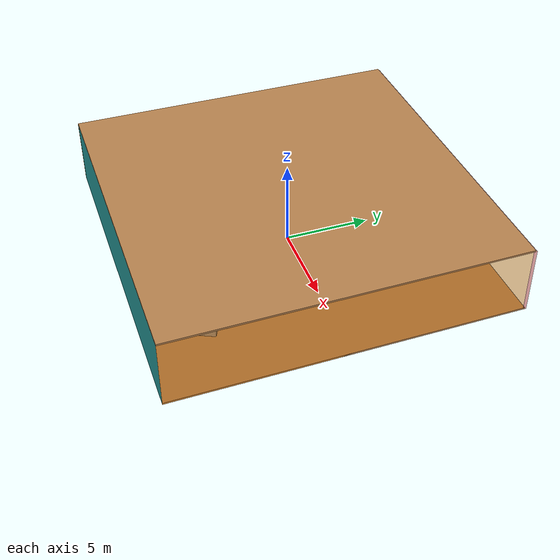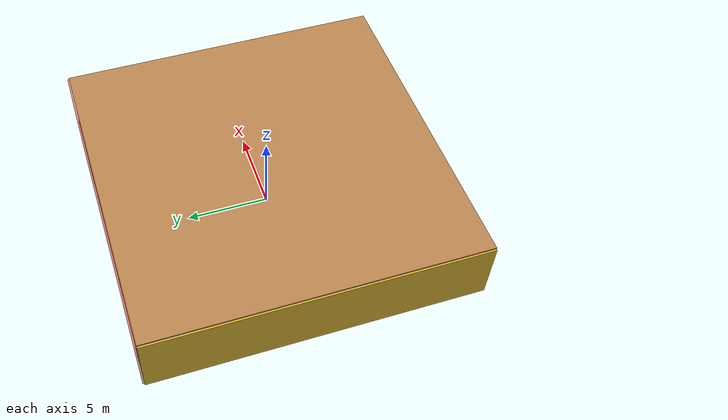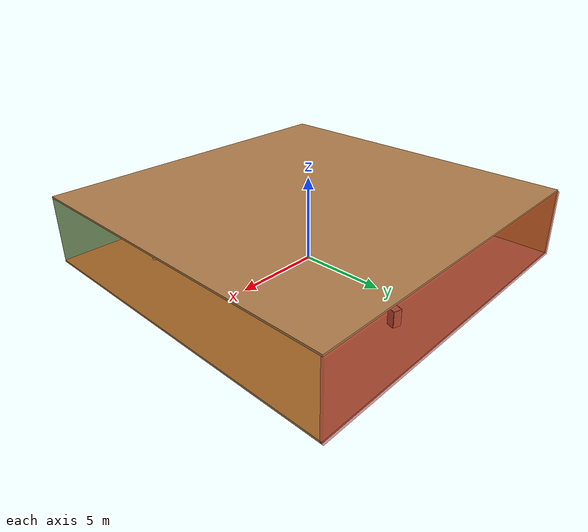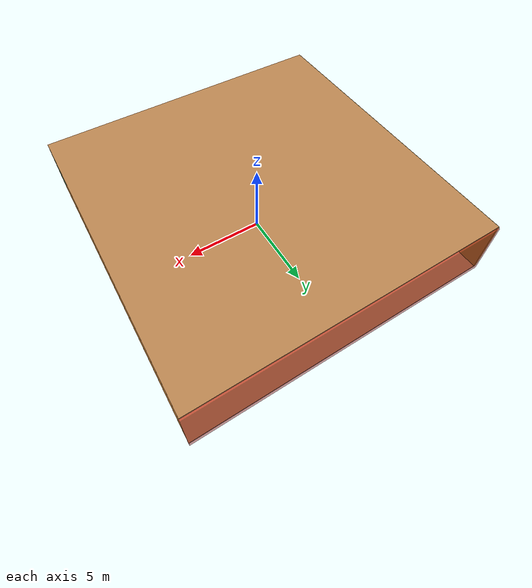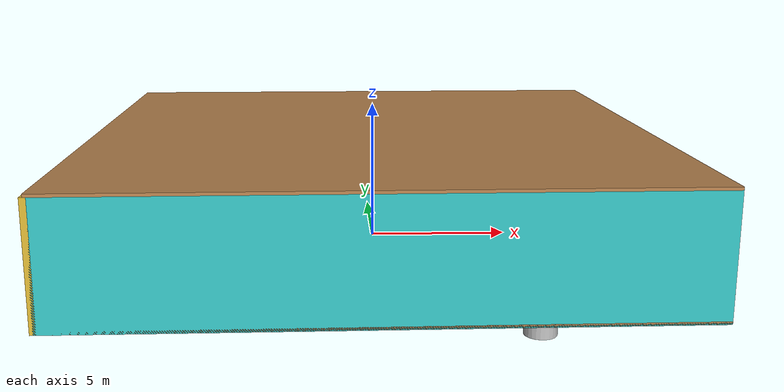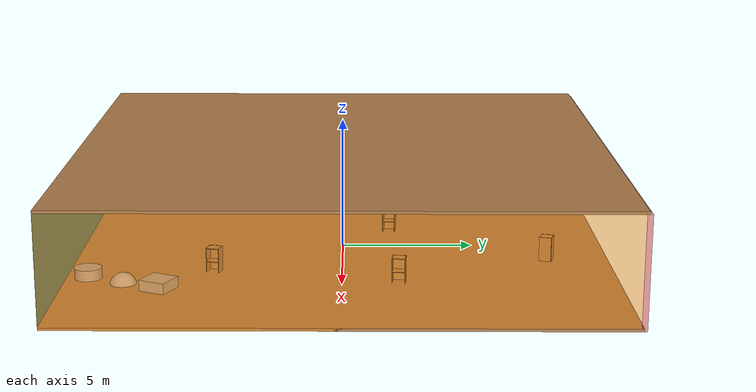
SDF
<sdf version="1.4">
 <world name="default">
  <physics type="ode">
   <max_step_size>0.001</max_step_size>
   <real_time_factor>1</real_time_factor>
   <real_time_update_rate>1000</real_time_update_rate>
   <gravity>0 0 -9.8</gravity>
  </physics>
  <scene><ambient>0.4 0.4 0.4 1</ambient><background>0.7 0.7 0.7 1</background><shadows>1</shadows></scene>
  <model name="Surrounding">
   <static>1</static>
   <link name="Ceiling">
    <collision name="Ceiling_Collision"><geometry><box><size>20 20 0.1</size></box></geometry></collision>
    <visual name="Ceiling_Visual">
     <geometry><box><size>20 20 0.1</size></box></geometry>
     <material>
      <script><uri>file://media/materials/scripts/gazebo.material</uri><name>Gazebo/Wood</name></script>
     </material>
    </visual>
    <pose>0 0 4.05 0 0 0</pose>
   </link>
   <link name="Wall_South">
    <collision name="Wall_South_Collision">
     <geometry><box><size>20 0 4</size></box></geometry>
     <pose>0 0 2 0 -0 0</pose>
    </collision>
    <visual name="Wall_South_Visual">
     <pose>0 0 2 0 -0 0</pose>
     <geometry><box><size>20 0 4</size></box></geometry>
     <material>
      <script><uri>file://media/materials/scripts/gazebo.material</uri><name>Gazebo/TurquoiseGlow</name></script>
     </material>
    </visual>
    <velocity_decay><linear>0</linear><angular>0</angular></velocity_decay>
    <pose>0 -10 0 0 -0 0</pose>
   </link>
   <link name="Wall_East">
    <collision name="Wall_21_Collision">
     <geometry><box><size>20 0 4</size></box></geometry>
     <pose>0 0 2 0 -0 0</pose>
    </collision>
    <visual name="Wall_21_Visual">
     <pose>0 0 2 0 -0 0</pose>
     <geometry><box><size>20 0 4</size></box></geometry>
     <material>
      <script>
       <uri>file://media/materials/scripts/gazebo.material</uri>
       <name>Gazebo/OrangeTransparent</name>
      </script>
     </material>
    </visual>
    <velocity_decay><linear>0</linear><angular>0</angular></velocity_decay>
    <pose>10 0 0 0 -0 1.5708</pose>
   </link>
   <link name="Wall_North">
    <collision name="Wall_22_Collision">
     <geometry><box><size>20 0.2 4</size></box></geometry>
     <pose>0 0 2 0 -0 0</pose>
    </collision>
    <visual name="Wall_22_Visual">
     <pose>0 0 2 0 -0 0</pose>
     <geometry><box><size>20 0.2 4</size></box></geometry>
     <material>
      <script><uri>file://media/materials/scripts/gazebo.material</uri><name>Gazebo/RedTransparent</name></script>
     </material>
    </visual>
    <velocity_decay><linear>0</linear><angular>0</angular></velocity_decay>
    <pose>0 10 0 0 -0 0</pose>
   </link>
   <link name="Wall_West">
    <collision name="Wall_23_Collision">
     <geometry><box><size>20 0.2 4</size></box></geometry>
     <pose>0 0 2 0 -0 0</pose>
    </collision>
    <visual name="Wall_23_Visual">
     <pose>0 0 2 0 -0 0</pose>
     <geometry><box><size>20 0.2 4</size></box></geometry>
     <material>
      <script><uri>file://media/materials/scripts/gazebo.material</uri><name>Gazebo/Gold</name></script>
     </material>
    </visual>
    <velocity_decay><linear>0</linear><angular>0</angular></velocity_decay>
    <pose>-10 0 0 0 0 -1.5708</pose>
   </link>
   <link name="Ground_link">
    <collision name="collision">
     <pose>0 0 .05 0 -0 0</pose>
     <geometry><box><size>20 20 0.1</size></box></geometry>
    </collision>
    <visual name="visual">
     <pose>0 0 .05 0 -0 0</pose>
     <geometry><box><size>20 20 0.1</size></box></geometry>
     <material>
      <script><uri>file://media/materials/scripts/gazebo.material</uri><name>Gazebo/Wood</name></script>
     </material>
    </visual>
   </link>
   <static>1</static>
  </model>
  <spherical_coordinates>
   <surface_model>EARTH_WGS84</surface_model>
   <latitude_deg>0</latitude_deg>
   <longitude_deg>0</longitude_deg>
   <elevation>0</elevation>
   <heading_deg>0</heading_deg>
  </spherical_coordinates>
  <light name="lightball_0" type="diffuse">
   <diffuse>0.8 0.8 0.8 1</diffuse>
   <specular>0.2 0.2 0.2 1</specular>
   <attenuation>
    <range>100</range>
    <constant>0.7</constant>
    <linear>0.01</linear>
    <quadratic>0.001</quadratic>
   </attenuation>
   <direction>-0.5 0.1 -0.9</direction>
   <pose>-9.18264329119 -7.50922165111 1.42935808767 0 0 0</pose>
  </light>
  <light name="lightball_1" type="diffuse">
   <diffuse>0.8 0.8 0.8 1</diffuse>
   <specular>0.2 0.2 0.2 1</specular>
   <attenuation>
    <range>100</range>
    <constant>0.7</constant>
    <linear>0.01</linear>
    <quadratic>0.001</quadratic>
   </attenuation>
   <direction>-0.5 0.1 -0.9</direction>
   <pose>5.09990956191 -2.25218148459 2.341728672 0 0 0</pose>
  </light>
  <light name="lightball_2" type="diffuse">
   <diffuse>0.8 0.8 0.8 1</diffuse>
   <specular>0.2 0.2 0.2 1</specular>
   <attenuation>
    <range>100</range>
    <constant>0.7</constant>
    <linear>0.01</linear>
    <quadratic>0.001</quadratic>
   </attenuation>
   <direction>-0.5 0.1 -0.9</direction>
   <pose>-6.58721351788 -4.91150879156 2.55248638565 0 0 0</pose>
  </light>
  <light name="lightball_3" type="diffuse">
   <diffuse>0.8 0.8 0.8 1</diffuse>
   <specular>0.2 0.2 0.2 1</specular>
   <attenuation>
    <range>100</range>
    <constant>0.7</constant>
    <linear>0.01</linear>
    <quadratic>0.001</quadratic>
   </attenuation>
   <direction>-0.5 0.1 -0.9</direction>
   <pose>7.12762233804 4.49917055145 1.95980079716 0 0 0</pose>
  </light>
  <include>
   <uri>model://robocup_3Dsim_goal</uri>
   <pose>-5.0040973072 -1.06229507397 0 0 0 0.0866344911378</pose>
  </include>
  <include><uri>model://cabinet</uri><pose>-1.78130879411 1.84194899445 0 0 0 2.990726651</pose></include>
  <include><uri>model://cabinet</uri><pose>2.194412671 7.66766838503 0 0 0 1.26663703678</pose></include>
  <include>
   <uri>model://textured_shapes</uri>
   <pose>5.21395129825 -7.84551378411 0 0 0 2.69634654991</pose>
  </include>
  <include><uri>model://cabinet</uri><pose>3.7248217587 -4.69480612834 0 0 0 2.88503006397</pose></include>
  <include><uri>model://cabinet</uri><pose>4.93940186878 2.05518540866 0 0 0 3.02273483065</pose></include>
 </world>
</sdf>

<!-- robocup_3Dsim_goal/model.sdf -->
<sdf version="1.5">
  <model name="robocup_3d_goal">
    <static>true</static>
    <link name="left_post">
      <pose>0 1.05 0.45 0 0 0</pose>
      <collision name="collision">
        <geometry>
          <cylinder>
            <radius>0.05</radius>
            <length>0.9</length>
          </cylinder>
        </geometry>
      </collision>
      <visual name="visual">
        <geometry>
          <cylinder>
            <radius>0.05</radius>
            <length>0.9</length>
          </cylinder>
        </geometry>
        <material>
          <script>
            <uri>file://media/materials/scripts/gazebo.material</uri>
            <name>Gazebo/ZincYellow</name>
          </script>
        </material>
      </visual>
    </link>
    <link name="left_support_horiz_lower">
      <pose>0.30 1.05 0.01 0 0 0</pose>
      <collision name="collision">
        <geometry>
          <box>
            <size>0.50 0.02 0.02</size>
          </box>
        </geometry>
      </collision>
      <visual name="visual">
        <geometry>
          <box>
            <size>0.50 0.02 0.02</size>
          </box>
        </geometry>
        <material>
          <script>
            <uri>file://media/materials/scripts/gazebo.material</uri>
            <name>Gazebo/White</name>
          </script>
        </material>
      </visual>
    </link>
    <link name="left_support_horiz_upper">
      <pose>0.30 1.05 0.79 0 0 0</pose>
      <collision name="collision">
        <geometry>
          <box>
            <size>0.50 0.02 0.02</size>
          </box>
        </geometry>
      </collision>
      <visual name="visual">
        <geometry>
          <box>
            <size>0.50 0.02 0.02</size>
          </box>
        </geometry>
        <material>
          <script>
            <uri>file://media/materials/scripts/gazebo.material</uri>
            <name>Gazebo/White</name>
          </script>
        </material>
      </visual>
    </link>
    <link name="left_support_vertical">
      <pose>0.56 1.05 0.4 0 1.5708 0</pose>
      <collision name="collision">
        <geometry>
          <box>
            <size>0.80 0.02 0.02</size>
          </box>
        </geometry>
      </collision>
      <visual name="visual">
        <geometry>
          <box>
            <size>0.80 0.02 0.02</size>
          </box>
        </geometry>
        <material>
          <script>
            <uri>file://media/materials/scripts/gazebo.material</uri>
            <name>Gazebo/White</name>
          </script>
        </material>
      </visual>
    </link>
    <link name="right_support_horiz_lower">
      <pose>0.30 -1.05 0.01 0 0 0</pose>
      <collision name="collision">
        <geometry>
          <box>
            <size>0.50 0.02 0.02</size>
          </box>
        </geometry>
      </collision>
      <visual name="visual">
        <geometry>
          <box>
            <size>0.50 0.02 0.02</size>
          </box>
        </geometry>
        <material>
          <script>
            <uri>file://media/materials/scripts/gazebo.material</uri>
            <name>Gazebo/White</name>
          </script>
        </material>
      </visual>
    </link>
    <link name="right_support_horiz_upper">
      <pose>0.30 -1.05 0.79 0 0 0</pose>
      <collision name="collision">
        <geometry>
          <box>
            <size>0.50 0.02 0.02</size>
          </box>
        </geometry>
      </collision>
      <visual name="visual">
        <geometry>
          <box>
            <size>0.50 0.02 0.02</size>
          </box>
        </geometry>
        <material>
          <script>
            <uri>file://media/materials/scripts/gazebo.material</uri>
            <name>Gazebo/White</name>
          </script>
        </material>
      </visual>
    </link>
    <link name="right_support_vertical">
      <pose>0.56 -1.05 0.4 0 1.5708 0</pose>
      <collision name="collision">
        <geometry>
          <box>
            <size>0.80 0.02 0.02</size>
          </box>
        </geometry>
      </collision>
      <visual name="visual">
        <geometry>
          <box>
            <size>0.80 0.02 0.02</size>
          </box>
        </geometry>
        <material>
          <script>
            <uri>file://media/materials/scripts/gazebo.material</uri>
            <name>Gazebo/White</name>
          </script>
        </material>
      </visual>
    </link>
    <link name="center_support_horiz_lower">
      <pose>0.56 0 0.01 0 1.5708 0</pose>
      <collision name="collision">
        <geometry>
          <box>
            <size>0.02 2.08 0.02</size>
          </box>
        </geometry>
      </collision>
      <visual name="visual">
        <geometry>
          <box>
            <size>0.02 2.08 0.02</size>
          </box>
        </geometry>
        <material>
          <script>
            <uri>file://media/materials/scripts/gazebo.material</uri>
            <name>Gazebo/White</name>
          </script>
        </material>
      </visual>
    </link>
    <link name="center_support_horiz_upper">
      <pose>0.56 0 0.79 0 1.5708 0</pose>
      <collision name="collision">
        <geometry>
          <box>
            <size>0.02 2.08 0.02</size>
          </box>
        </geometry>
      </collision>
      <visual name="visual">
        <geometry>
          <box>
            <size>0.02 2.08 0.02</size>
          </box>
        </geometry>
        <material>
          <script>
            <uri>file://media/materials/scripts/gazebo.material</uri>
            <name>Gazebo/White</name>
          </script>
        </material>
      </visual>
    </link>
    <link name="right_post">
      <pose>0 -1.05 0.45 0 0 0</pose>
      <collision name="collision">
        <geometry>
          <cylinder>
            <radius>0.05</radius>
            <length>0.9</length>
          </cylinder>
        </geometry>
      </collision>
      <visual name="visual">
        <geometry>
          <cylinder>
            <radius>0.05</radius>
            <length>0.9</length>
          </cylinder>
        </geometry>
        <material>
          <script>
            <uri>file://media/materials/scripts/gazebo.material</uri>
            <name>Gazebo/ZincYellow</name>
          </script>
        </material>
      </visual>
    </link>
    <link name="crossbar">
      <pose>0 0 0.85 1.57 1.57 0</pose>
      <collision name="collision">
        <geometry>
          <cylinder>
            <radius>0.05</radius>
            <length>2.0</length>
          </cylinder>
        </geometry>
      </collision>
      <visual name="visual">
        <geometry>
          <cylinder>
            <radius>0.05</radius>
            <length>2.0</length>
          </cylinder>
        </geometry>
        <material>
          <script>
            <uri>file://media/materials/scripts/gazebo.material</uri>
            <name>Gazebo/ZincYellow</name>
          </script>
        </material>
      </visual>
    </link>
    <link name="center_net">
      <pose>0.56 0 0.40 0 0 0</pose>
      <collision name="collision">
        <geometry>
          <box>
            <size>0.01 2.1 0.80</size>
          </box>
        </geometry>
      </collision>
      <visual name="visual">
        <geometry>
          <box>
            <size>0.01 2.1 0.80</size>
          </box>
        </geometry>
        <material>
          <script>
            <uri>model://../model_source/models/robocup09_spl_field/materials/scripts/</uri>
            <uri>model://../model_source/models/robocup09_spl_field/materials/textures/</uri>
            <name>RoboCup/Net</name>
          </script>
        </material>
      </visual>
    </link>
    <link name="left_net">
      <pose>0.30 1.05 0.40 0 0 0</pose>
      <collision name="collision">
        <geometry>
          <box>
            <size>0.50 0.01 0.76</size>
          </box>
        </geometry>
      </collision>
      <visual name="visual">
        <geometry>
          <box>
            <size>0.50 0.01 0.76</size>
          </box>
        </geometry>
        <material>
          <script>
            <uri>model://../model_source/models/robocup09_spl_field/materials/scripts/</uri>
            <uri>model://../model_source/models/robocup09_spl_field/materials/textures/</uri>
            <name>RoboCup/Net</name>
          </script>
        </material>
      </visual>
    </link>
    <link name="right_net">
      <pose>0.30 -1.05 0.40 0 0 0</pose>
      <collision name="collision">
        <geometry>
          <box>
            <size>0.50 0.01 0.76</size>
          </box>
        </geometry>
      </collision>
      <visual name="visual">
        <geometry>
          <box>
            <size>0.50 0.01 0.76</size>
          </box>
        </geometry>
        <material>
          <script>
            <uri>model://../model_source/models/robocup09_spl_field/materials/scripts/</uri>
            <uri>model://../model_source/models/robocup09_spl_field/materials/textures/</uri>
            <name>RoboCup/Net</name>
          </script>
        </material>
      </visual>
    </link>
  </model>
</sdf>

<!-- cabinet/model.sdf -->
<sdf version="1.5">
  <model name="cabinet">
    <static>true</static>
    <link name="cabinet_bottom_plate">
      <inertial>
        <pose>0 0 -1 0 0 0</pose>
        <inertia>
          <ixx>2.050000</ixx>
          <ixy>0</ixy>
          <ixz>0</ixz>
          <iyy>2.050000</iyy>
          <iyz>0</iyz>
          <izz>2.050000</izz>
        </inertia>
        <mass>25.000000</mass>
      </inertial>
      <collision name="cabinet_bottom_plate_geom">
        <pose>0 0 0.010000 0 0 0</pose>
        <geometry>
          <box>
            <size>0.450000 0.450000 0.020000</size>
          </box>
        </geometry>
      </collision>
      <visual name="cabinet_bottom_plate_geom_visual">
        <pose>0 0 0.010000 0 0 0</pose>
        <geometry>
          <box>
            <size>0.450000 0.450000 0.020000</size>
          </box>
        </geometry>
        <material>
          <script>
            <uri>model://media/materials/scripts/gazebo.material</uri>
            <name>Gazebo/Wood</name>
          </script>
        </material>
      </visual>
      <collision name="cabinet_bottom_plate_geom_cabinet_back_plate">
        <pose>0.235000 0 0.510000 0 0 0</pose>
        <geometry>
          <box>
            <size>0.020000 0.450000 1.020000</size>
          </box>
        </geometry>
      </collision>
      <visual name="cabinet_bottom_plate_geom_cabinet_back_plate_visual">
        <pose>0.235000 0 0.510000 0 0 0</pose>
        <geometry>
          <box>
            <size>0.020000 0.450000 1.020000</size>
          </box>
        </geometry>
        <material>
          <script>
            <uri>model://media/materials/scripts/gazebo.material</uri>
            <name>Gazebo/Wood</name>
          </script>
        </material>
      </visual>
      <collision name="cabinet_bottom_plate_geom_cabinet_left_plate">
        <pose>0 0.235000 0.510000 0 0 0</pose>
        <geometry>
          <box>
            <size>0.450000 0.020000 1.020000</size>
          </box>
        </geometry>
      </collision>
      <visual name="cabinet_bottom_plate_geom_cabinet_left_plate_visual">
        <pose>0 0.235000 0.510000 0 0 0</pose>
        <geometry>
          <box>
            <size>0.450000 0.020000 1.020000</size>
          </box>
        </geometry>
        <material>
          <script>
            <uri>model://media/materials/scripts/gazebo.material</uri>
            <name>Gazebo/Wood</name>
          </script>
        </material>
      </visual>
      <collision name="cabinet_bottom_plate_geom_cabinet_middle_plate">
        <pose>0 0 0.510000 0 0 0</pose>
        <geometry>
          <box>
            <size>0.450000 0.450000 0.020000</size>
          </box>
        </geometry>
      </collision>
      <visual name="cabinet_bottom_plate_geom_cabinet_middle_plate_visual">
        <pose>0 0 0.510000 0 0 0</pose>
        <geometry>
          <box>
            <size>0.450000 0.450000 0.020000</size>
          </box>
        </geometry>
        <material>
          <script>
            <uri>model://media/materials/scripts/gazebo.material</uri>
            <name>Gazebo/Wood</name>
          </script>
        </material>
      </visual>
      <collision name="cabinet_bottom_plate_geom_cabinet_right_plate">
        <pose>0 -0.235000 0.510000 0 0 0</pose>
        <geometry>
          <box>
            <size>0.450000 0.020000 1.020000</size>
          </box>
        </geometry>
      </collision>
      <visual name="cabinet_bottom_plate_geom_cabinet_right_plate_visual">
        <pose>0 -0.235000 0.510000 0 0 0</pose>
        <geometry>
          <box>
            <size>0.450000 0.020000 1.020000</size>
          </box>
        </geometry>
        <material>
          <script>
            <uri>model://media/materials/scripts/gazebo.material</uri>
            <name>Gazebo/Wood</name>
          </script>
        </material>
      </visual>
      <collision name="cabinet_bottom_plate_geom_cabinet_top_plate">
        <pose>0 0 1.010000 0 0 0</pose>
        <geometry>
          <box>
            <size>0.450000 0.450000 0.020000</size>
          </box>
        </geometry>
      </collision>
      <visual name="cabinet_bottom_plate_geom_cabinet_top_plate_visual">
        <pose>0 0 1.010000 0 0 0</pose>
        <geometry>
          <box>
            <size>0.450000 0.450000 0.020000</size>
          </box>
        </geometry>
        <material>
          <script>
            <uri>model://media/materials/scripts/gazebo.material</uri>
            <name>Gazebo/Wood</name>
          </script>
        </material>
      </visual>
    </link>
  </model>
</sdf>

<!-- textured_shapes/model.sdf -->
<sdf version="1.6">
  <model name="textured_shapes">
    <pose>0 0 0.5 0 0 0</pose>
    <link name="box">
      <pose>0 -1.5 0 0 0 0</pose>
      <collision name="collision">
        <geometry>
          <box>
            <size>1 1 1</size>
          </box>
        </geometry>
      </collision>
      <visual name="visual">
        <geometry>
          <box>
            <size>1 1 1</size>
          </box>
        </geometry>
        <material>
          <script>
            <uri>model://../model_source/models/textured_shapes/materials/scripts</uri>
            <uri>model://../model_source/models/textured_shapes/materials/textures</uri>
            <name>TexturedShape/Squares</name>
          </script>
        </material>
      </visual>
    </link>
    <link name="sphere">
      <collision name="collision">
        <geometry>
          <sphere>
            <radius>0.5</radius>
          </sphere>
        </geometry>
      </collision>
      <visual name="visual">
        <geometry>
          <sphere>
            <radius>0.5</radius>
          </sphere>
        </geometry>
        <material>
          <script>
            <uri>model://../model_source/models/textured_shapes/materials/scripts</uri>
            <uri>model://../model_source/models/textured_shapes/materials/textures</uri>
            <name>TexturedShape/Squares</name>
          </script>
        </material>
      </visual>
    </link>
    <link name="cylinder">
      <pose>0 1.5 0 0 0 0</pose>
      <collision name="collision">
        <geometry>
          <cylinder>
            <radius>0.5</radius>
            <length>1</length>
          </cylinder>
        </geometry>
      </collision>
      <visual name="visual">
        <geometry>
          <cylinder>
            <radius>0.5</radius>
            <length>1</length>
          </cylinder>
        </geometry>
        <material>
          <script>
            <uri>model://../model_source/models/textured_shapes/materials/scripts</uri>
            <uri>model://../model_source/models/textured_shapes/materials/textures</uri>
            <name>TexturedShape/Squares</name>
          </script>
        </material>
      </visual>
    </link>
  </model>
</sdf>
